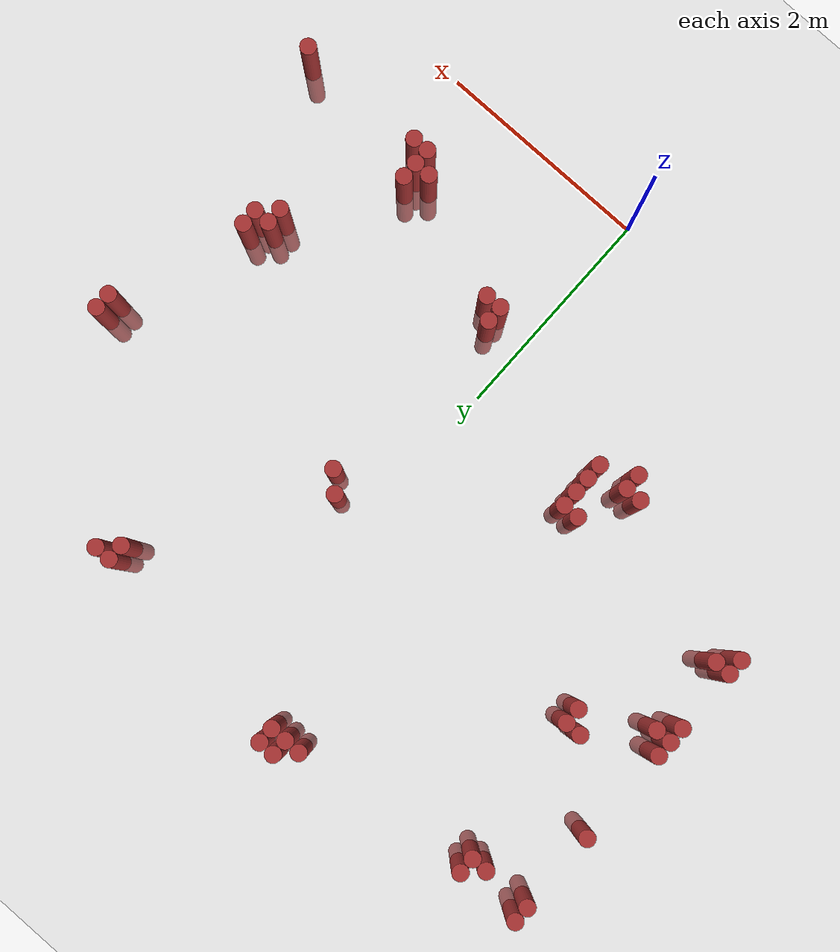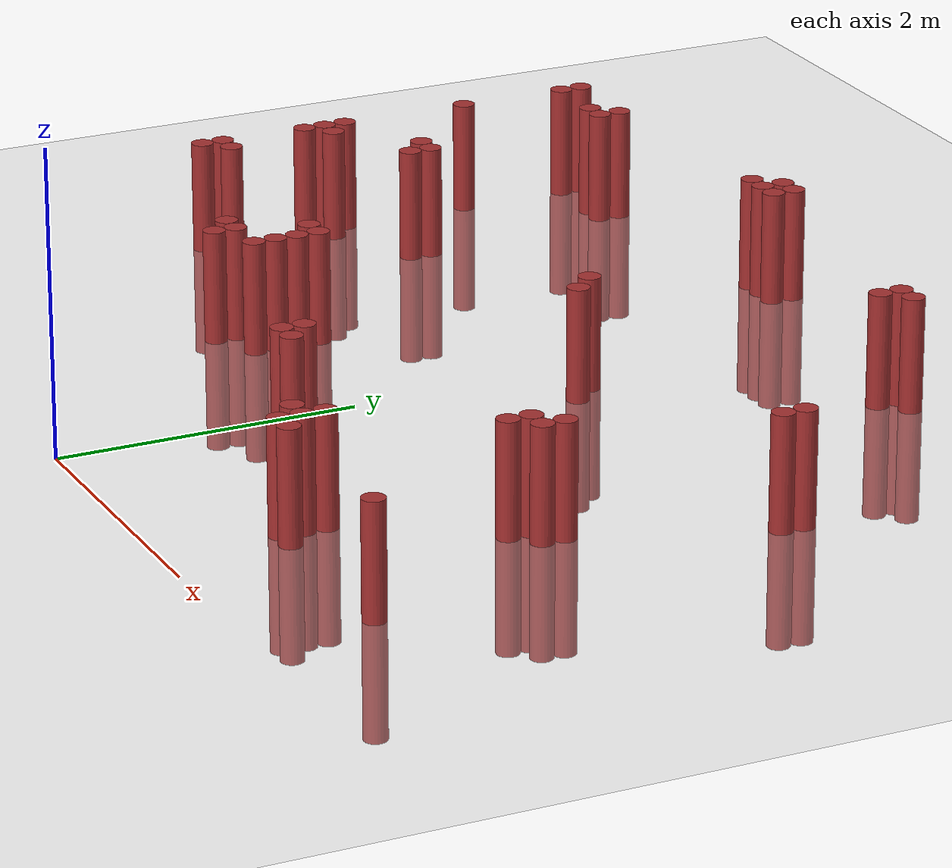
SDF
<sdf version="1.6">
 <world name="default">
  <model name="ground_plane">
   <static>1</static>
   <link name="link">
    <collision name="collision">
     <geometry><plane><normal>0 0 1</normal><size>100 100</size></plane></geometry>
     <surface><friction><ode><mu>100</mu><mu2>50</mu2></ode></friction></surface>
    </collision>
    <visual name="visual">
     <cast_shadows>0</cast_shadows>
     <geometry><plane><normal>0 0 1</normal><size>100 100</size></plane></geometry>
     <material>
      <script><uri>file://media/materials/scripts/gazebo.material</uri><name>Gazebo/Grey</name></script>
     </material>
    </visual>
   </link>
  </model>
  <model name="unit_cylinder_295">
   <static>1</static>
   <pose>-3.125000 2.275000 0.000000 0.000000 0.000000 0.000000</pose>
   <link name="link">
    <inertial>
     <mass>1</mass>
     <inertia><ixx>0.145833</ixx><ixy>0</ixy><ixz>0</ixz><iyy>0.145833</iyy><iyz>0</iyz><izz>0.125</izz></inertia>
    </inertial>
    <collision name="collision">
     <geometry><cylinder><radius>0.075000</radius><length>1.5</length></cylinder></geometry>
    </collision>
    <visual name="visual">
     <geometry><cylinder><radius>0.075000</radius><length>1.5</length></cylinder></geometry>
     <material>
      <ambient>0.648000 0.192000 0.192000 1</ambient>
      <diffuse>0.648000 0.192000 0.192000 1</diffuse>
     </material>
     <material>
      <script><name>Gazebo/Grey</name><uri>file://media/materials/scripts/gazebo.material</uri></script>
     </material>
    </visual>
   </link>
  </model>
  <model name="unit_cylinder_296">
   <static>1</static>
   <pose>-3.125000 2.425000 0.000000 0.000000 0.000000 0.000000</pose>
   <link name="link">
    <inertial>
     <mass>1</mass>
     <inertia><ixx>0.145833</ixx><ixy>0</ixy><ixz>0</ixz><iyy>0.145833</iyy><iyz>0</iyz><izz>0.125</izz></inertia>
    </inertial>
    <collision name="collision">
     <geometry><cylinder><radius>0.075000</radius><length>1.5</length></cylinder></geometry>
    </collision>
    <visual name="visual">
     <geometry><cylinder><radius>0.075000</radius><length>1.5</length></cylinder></geometry>
     <material>
      <ambient>0.648000 0.192000 0.192000 1</ambient>
      <diffuse>0.648000 0.192000 0.192000 1</diffuse>
     </material>
     <material>
      <script><name>Gazebo/Grey</name><uri>file://media/materials/scripts/gazebo.material</uri></script>
     </material>
    </visual>
   </link>
  </model>
  <model name="unit_cylinder_297">
   <static>1</static>
   <pose>-3.125000 3.025000 0.000000 0.000000 0.000000 0.000000</pose>
   <link name="link">
    <inertial>
     <mass>1</mass>
     <inertia><ixx>0.145833</ixx><ixy>0</ixy><ixz>0</ixz><iyy>0.145833</iyy><iyz>0</iyz><izz>0.125</izz></inertia>
    </inertial>
    <collision name="collision">
     <geometry><cylinder><radius>0.075000</radius><length>1.5</length></cylinder></geometry>
    </collision>
    <visual name="visual">
     <geometry><cylinder><radius>0.075000</radius><length>1.5</length></cylinder></geometry>
     <material>
      <ambient>0.648000 0.192000 0.192000 1</ambient>
      <diffuse>0.648000 0.192000 0.192000 1</diffuse>
     </material>
     <material>
      <script><name>Gazebo/Grey</name><uri>file://media/materials/scripts/gazebo.material</uri></script>
     </material>
    </visual>
   </link>
  </model>
  <model name="unit_cylinder_298">
   <static>1</static>
   <pose>-3.125000 3.175000 0.000000 0.000000 0.000000 0.000000</pose>
   <link name="link">
    <inertial>
     <mass>1</mass>
     <inertia><ixx>0.145833</ixx><ixy>0</ixy><ixz>0</ixz><iyy>0.145833</iyy><iyz>0</iyz><izz>0.125</izz></inertia>
    </inertial>
    <collision name="collision">
     <geometry><cylinder><radius>0.075000</radius><length>1.5</length></cylinder></geometry>
    </collision>
    <visual name="visual">
     <geometry><cylinder><radius>0.075000</radius><length>1.5</length></cylinder></geometry>
     <material>
      <ambient>0.648000 0.192000 0.192000 1</ambient>
      <diffuse>0.648000 0.192000 0.192000 1</diffuse>
     </material>
     <material>
      <script><name>Gazebo/Grey</name><uri>file://media/materials/scripts/gazebo.material</uri></script>
     </material>
    </visual>
   </link>
  </model>
  <model name="unit_cylinder_299">
   <static>1</static>
   <pose>-3.125000 3.325000 0.000000 0.000000 0.000000 0.000000</pose>
   <link name="link">
    <inertial>
     <mass>1</mass>
     <inertia><ixx>0.145833</ixx><ixy>0</ixy><ixz>0</ixz><iyy>0.145833</iyy><iyz>0</iyz><izz>0.125</izz></inertia>
    </inertial>
    <collision name="collision">
     <geometry><cylinder><radius>0.075000</radius><length>1.5</length></cylinder></geometry>
    </collision>
    <visual name="visual">
     <geometry><cylinder><radius>0.075000</radius><length>1.5</length></cylinder></geometry>
     <material>
      <ambient>0.648000 0.192000 0.192000 1</ambient>
      <diffuse>0.648000 0.192000 0.192000 1</diffuse>
     </material>
     <material>
      <script><name>Gazebo/Grey</name><uri>file://media/materials/scripts/gazebo.material</uri></script>
     </material>
    </visual>
   </link>
  </model>
  <model name="unit_cylinder_300">
   <static>1</static>
   <pose>-3.125000 4.225000 0.000000 0.000000 0.000000 0.000000</pose>
   <link name="link">
    <inertial>
     <mass>1</mass>
     <inertia><ixx>0.145833</ixx><ixy>0</ixy><ixz>0</ixz><iyy>0.145833</iyy><iyz>0</iyz><izz>0.125</izz></inertia>
    </inertial>
    <collision name="collision">
     <geometry><cylinder><radius>0.075000</radius><length>1.5</length></cylinder></geometry>
    </collision>
    <visual name="visual">
     <geometry><cylinder><radius>0.075000</radius><length>1.5</length></cylinder></geometry>
     <material>
      <ambient>0.648000 0.192000 0.192000 1</ambient>
      <diffuse>0.648000 0.192000 0.192000 1</diffuse>
     </material>
     <material>
      <script><name>Gazebo/Grey</name><uri>file://media/materials/scripts/gazebo.material</uri></script>
     </material>
    </visual>
   </link>
  </model>
  <model name="unit_cylinder_301">
   <static>1</static>
   <pose>-3.125000 4.975000 0.000000 0.000000 0.000000 0.000000</pose>
   <link name="link">
    <inertial>
     <mass>1</mass>
     <inertia><ixx>0.145833</ixx><ixy>0</ixy><ixz>0</ixz><iyy>0.145833</iyy><iyz>0</iyz><izz>0.125</izz></inertia>
    </inertial>
    <collision name="collision">
     <geometry><cylinder><radius>0.075000</radius><length>1.5</length></cylinder></geometry>
    </collision>
    <visual name="visual">
     <geometry><cylinder><radius>0.075000</radius><length>1.5</length></cylinder></geometry>
     <material>
      <ambient>0.648000 0.192000 0.192000 1</ambient>
      <diffuse>0.648000 0.192000 0.192000 1</diffuse>
     </material>
     <material>
      <script><name>Gazebo/Grey</name><uri>file://media/materials/scripts/gazebo.material</uri></script>
     </material>
    </visual>
   </link>
  </model>
  <model name="unit_cylinder_302">
   <static>1</static>
   <pose>-3.125000 5.125000 0.000000 0.000000 0.000000 0.000000</pose>
   <link name="link">
    <inertial>
     <mass>1</mass>
     <inertia><ixx>0.145833</ixx><ixy>0</ixy><ixz>0</ixz><iyy>0.145833</iyy><iyz>0</iyz><izz>0.125</izz></inertia>
    </inertial>
    <collision name="collision">
     <geometry><cylinder><radius>0.075000</radius><length>1.5</length></cylinder></geometry>
    </collision>
    <visual name="visual">
     <geometry><cylinder><radius>0.075000</radius><length>1.5</length></cylinder></geometry>
     <material>
      <ambient>0.648000 0.192000 0.192000 1</ambient>
      <diffuse>0.648000 0.192000 0.192000 1</diffuse>
     </material>
     <material>
      <script><name>Gazebo/Grey</name><uri>file://media/materials/scripts/gazebo.material</uri></script>
     </material>
    </visual>
   </link>
  </model>
  <model name="unit_cylinder_304">
   <static>1</static>
   <pose>-2.975000 2.425000 0.000000 0.000000 0.000000 0.000000</pose>
   <link name="link">
    <inertial>
     <mass>1</mass>
     <inertia><ixx>0.145833</ixx><ixy>0</ixy><ixz>0</ixz><iyy>0.145833</iyy><iyz>0</iyz><izz>0.125</izz></inertia>
    </inertial>
    <collision name="collision">
     <geometry><cylinder><radius>0.075000</radius><length>1.5</length></cylinder></geometry>
    </collision>
    <visual name="visual">
     <geometry><cylinder><radius>0.075000</radius><length>1.5</length></cylinder></geometry>
     <material>
      <ambient>0.648000 0.192000 0.192000 1</ambient>
      <diffuse>0.648000 0.192000 0.192000 1</diffuse>
     </material>
     <material>
      <script><name>Gazebo/Grey</name><uri>file://media/materials/scripts/gazebo.material</uri></script>
     </material>
    </visual>
   </link>
  </model>
  <model name="unit_cylinder_305">
   <static>1</static>
   <pose>-2.975000 3.175000 0.000000 0.000000 0.000000 0.000000</pose>
   <link name="link">
    <inertial>
     <mass>1</mass>
     <inertia><ixx>0.145833</ixx><ixy>0</ixy><ixz>0</ixz><iyy>0.145833</iyy><iyz>0</iyz><izz>0.125</izz></inertia>
    </inertial>
    <collision name="collision">
     <geometry><cylinder><radius>0.075000</radius><length>1.5</length></cylinder></geometry>
    </collision>
    <visual name="visual">
     <geometry><cylinder><radius>0.075000</radius><length>1.5</length></cylinder></geometry>
     <material>
      <ambient>0.648000 0.192000 0.192000 1</ambient>
      <diffuse>0.648000 0.192000 0.192000 1</diffuse>
     </material>
     <material>
      <script><name>Gazebo/Grey</name><uri>file://media/materials/scripts/gazebo.material</uri></script>
     </material>
    </visual>
   </link>
  </model>
  <model name="unit_cylinder_307">
   <static>1</static>
   <pose>-2.675000 4.975000 0.000000 0.000000 0.000000 0.000000</pose>
   <link name="link">
    <inertial>
     <mass>1</mass>
     <inertia><ixx>0.145833</ixx><ixy>0</ixy><ixz>0</ixz><iyy>0.145833</iyy><iyz>0</iyz><izz>0.125</izz></inertia>
    </inertial>
    <collision name="collision">
     <geometry><cylinder><radius>0.075000</radius><length>1.5</length></cylinder></geometry>
    </collision>
    <visual name="visual">
     <geometry><cylinder><radius>0.075000</radius><length>1.5</length></cylinder></geometry>
     <material>
      <ambient>0.648000 0.192000 0.192000 1</ambient>
      <diffuse>0.648000 0.192000 0.192000 1</diffuse>
     </material>
     <material>
      <script><name>Gazebo/Grey</name><uri>file://media/materials/scripts/gazebo.material</uri></script>
     </material>
    </visual>
   </link>
  </model>
  <model name="unit_cylinder_308">
   <static>1</static>
   <pose>-2.525000 3.625000 0.000000 0.000000 0.000000 0.000000</pose>
   <link name="link">
    <inertial>
     <mass>1</mass>
     <inertia><ixx>0.145833</ixx><ixy>0</ixy><ixz>0</ixz><iyy>0.145833</iyy><iyz>0</iyz><izz>0.125</izz></inertia>
    </inertial>
    <collision name="collision">
     <geometry><cylinder><radius>0.075000</radius><length>1.5</length></cylinder></geometry>
    </collision>
    <visual name="visual">
     <geometry><cylinder><radius>0.075000</radius><length>1.5</length></cylinder></geometry>
     <material>
      <ambient>0.648000 0.192000 0.192000 1</ambient>
      <diffuse>0.648000 0.192000 0.192000 1</diffuse>
     </material>
     <material>
      <script><name>Gazebo/Grey</name><uri>file://media/materials/scripts/gazebo.material</uri></script>
     </material>
    </visual>
   </link>
  </model>
  <model name="unit_cylinder_309">
   <static>1</static>
   <pose>-2.525000 4.975000 0.000000 0.000000 0.000000 0.000000</pose>
   <link name="link">
    <inertial>
     <mass>1</mass>
     <inertia><ixx>0.145833</ixx><ixy>0</ixy><ixz>0</ixz><iyy>0.145833</iyy><iyz>0</iyz><izz>0.125</izz></inertia>
    </inertial>
    <collision name="collision">
     <geometry><cylinder><radius>0.075000</radius><length>1.5</length></cylinder></geometry>
    </collision>
    <visual name="visual">
     <geometry><cylinder><radius>0.075000</radius><length>1.5</length></cylinder></geometry>
     <material>
      <ambient>0.648000 0.192000 0.192000 1</ambient>
      <diffuse>0.648000 0.192000 0.192000 1</diffuse>
     </material>
     <material>
      <script><name>Gazebo/Grey</name><uri>file://media/materials/scripts/gazebo.material</uri></script>
     </material>
    </visual>
   </link>
  </model>
  <model name="unit_cylinder_310">
   <static>1</static>
   <pose>-2.525000 5.125000 0.000000 0.000000 0.000000 0.000000</pose>
   <link name="link">
    <inertial>
     <mass>1</mass>
     <inertia><ixx>0.145833</ixx><ixy>0</ixy><ixz>0</ixz><iyy>0.145833</iyy><iyz>0</iyz><izz>0.125</izz></inertia>
    </inertial>
    <collision name="collision">
     <geometry><cylinder><radius>0.075000</radius><length>1.5</length></cylinder></geometry>
    </collision>
    <visual name="visual">
     <geometry><cylinder><radius>0.075000</radius><length>1.5</length></cylinder></geometry>
     <material>
      <ambient>0.648000 0.192000 0.192000 1</ambient>
      <diffuse>0.648000 0.192000 0.192000 1</diffuse>
     </material>
     <material>
      <script><name>Gazebo/Grey</name><uri>file://media/materials/scripts/gazebo.material</uri></script>
     </material>
    </visual>
   </link>
  </model>
  <model name="unit_cylinder_311">
   <static>1</static>
   <pose>-2.375000 3.475000 0.000000 0.000000 0.000000 0.000000</pose>
   <link name="link">
    <inertial>
     <mass>1</mass>
     <inertia><ixx>0.145833</ixx><ixy>0</ixy><ixz>0</ixz><iyy>0.145833</iyy><iyz>0</iyz><izz>0.125</izz></inertia>
    </inertial>
    <collision name="collision">
     <geometry><cylinder><radius>0.075000</radius><length>1.5</length></cylinder></geometry>
    </collision>
    <visual name="visual">
     <geometry><cylinder><radius>0.075000</radius><length>1.5</length></cylinder></geometry>
     <material>
      <ambient>0.648000 0.192000 0.192000 1</ambient>
      <diffuse>0.648000 0.192000 0.192000 1</diffuse>
     </material>
     <material>
      <script><name>Gazebo/Grey</name><uri>file://media/materials/scripts/gazebo.material</uri></script>
     </material>
    </visual>
   </link>
  </model>
  <model name="unit_cylinder_312">
   <static>1</static>
   <pose>-2.375000 3.625000 0.000000 0.000000 0.000000 0.000000</pose>
   <link name="link">
    <inertial>
     <mass>1</mass>
     <inertia><ixx>0.145833</ixx><ixy>0</ixy><ixz>0</ixz><iyy>0.145833</iyy><iyz>0</iyz><izz>0.125</izz></inertia>
    </inertial>
    <collision name="collision">
     <geometry><cylinder><radius>0.075000</radius><length>1.5</length></cylinder></geometry>
    </collision>
    <visual name="visual">
     <geometry><cylinder><radius>0.075000</radius><length>1.5</length></cylinder></geometry>
     <material>
      <ambient>0.648000 0.192000 0.192000 1</ambient>
      <diffuse>0.648000 0.192000 0.192000 1</diffuse>
     </material>
     <material>
      <script><name>Gazebo/Grey</name><uri>file://media/materials/scripts/gazebo.material</uri></script>
     </material>
    </visual>
   </link>
  </model>
  <model name="unit_cylinder_313">
   <static>1</static>
   <pose>-1.625000 1.825000 0.000000 0.000000 0.000000 0.000000</pose>
   <link name="link">
    <inertial>
     <mass>1</mass>
     <inertia><ixx>0.145833</ixx><ixy>0</ixy><ixz>0</ixz><iyy>0.145833</iyy><iyz>0</iyz><izz>0.125</izz></inertia>
    </inertial>
    <collision name="collision">
     <geometry><cylinder><radius>0.075000</radius><length>1.5</length></cylinder></geometry>
    </collision>
    <visual name="visual">
     <geometry><cylinder><radius>0.075000</radius><length>1.5</length></cylinder></geometry>
     <material>
      <ambient>0.648000 0.192000 0.192000 1</ambient>
      <diffuse>0.648000 0.192000 0.192000 1</diffuse>
     </material>
     <material>
      <script><name>Gazebo/Grey</name><uri>file://media/materials/scripts/gazebo.material</uri></script>
     </material>
    </visual>
   </link>
  </model>
  <model name="unit_cylinder_314">
   <static>1</static>
   <pose>-1.475000 1.675000 0.000000 0.000000 0.000000 0.000000</pose>
   <link name="link">
    <inertial>
     <mass>1</mass>
     <inertia><ixx>0.145833</ixx><ixy>0</ixy><ixz>0</ixz><iyy>0.145833</iyy><iyz>0</iyz><izz>0.125</izz></inertia>
    </inertial>
    <collision name="collision">
     <geometry><cylinder><radius>0.075000</radius><length>1.5</length></cylinder></geometry>
    </collision>
    <visual name="visual">
     <geometry><cylinder><radius>0.075000</radius><length>1.5</length></cylinder></geometry>
     <material>
      <ambient>0.648000 0.192000 0.192000 1</ambient>
      <diffuse>0.648000 0.192000 0.192000 1</diffuse>
     </material>
     <material>
      <script><name>Gazebo/Grey</name><uri>file://media/materials/scripts/gazebo.material</uri></script>
     </material>
    </visual>
   </link>
  </model>
  <model name="unit_cylinder_315">
   <static>1</static>
   <pose>-1.475000 1.825000 0.000000 0.000000 0.000000 0.000000</pose>
   <link name="link">
    <inertial>
     <mass>1</mass>
     <inertia><ixx>0.145833</ixx><ixy>0</ixy><ixz>0</ixz><iyy>0.145833</iyy><iyz>0</iyz><izz>0.125</izz></inertia>
    </inertial>
    <collision name="collision">
     <geometry><cylinder><radius>0.075000</radius><length>1.5</length></cylinder></geometry>
    </collision>
    <visual name="visual">
     <geometry><cylinder><radius>0.075000</radius><length>1.5</length></cylinder></geometry>
     <material>
      <ambient>0.648000 0.192000 0.192000 1</ambient>
      <diffuse>0.648000 0.192000 0.192000 1</diffuse>
     </material>
     <material>
      <script><name>Gazebo/Grey</name><uri>file://media/materials/scripts/gazebo.material</uri></script>
     </material>
    </visual>
   </link>
  </model>
  <model name="unit_cylinder_316">
   <static>1</static>
   <pose>-1.325000 2.275000 0.000000 0.000000 0.000000 0.000000</pose>
   <link name="link">
    <inertial>
     <mass>1</mass>
     <inertia><ixx>0.145833</ixx><ixy>0</ixy><ixz>0</ixz><iyy>0.145833</iyy><iyz>0</iyz><izz>0.125</izz></inertia>
    </inertial>
    <collision name="collision">
     <geometry><cylinder><radius>0.075000</radius><length>1.5</length></cylinder></geometry>
    </collision>
    <visual name="visual">
     <geometry><cylinder><radius>0.075000</radius><length>1.5</length></cylinder></geometry>
     <material>
      <ambient>0.648000 0.192000 0.192000 1</ambient>
      <diffuse>0.648000 0.192000 0.192000 1</diffuse>
     </material>
     <material>
      <script><name>Gazebo/Grey</name><uri>file://media/materials/scripts/gazebo.material</uri></script>
     </material>
    </visual>
   </link>
  </model>
  <model name="unit_cylinder_317">
   <static>1</static>
   <pose>-1.175000 1.825000 0.000000 0.000000 0.000000 0.000000</pose>
   <link name="link">
    <inertial>
     <mass>1</mass>
     <inertia><ixx>0.145833</ixx><ixy>0</ixy><ixz>0</ixz><iyy>0.145833</iyy><iyz>0</iyz><izz>0.125</izz></inertia>
    </inertial>
    <collision name="collision">
     <geometry><cylinder><radius>0.075000</radius><length>1.5</length></cylinder></geometry>
    </collision>
    <visual name="visual">
     <geometry><cylinder><radius>0.075000</radius><length>1.5</length></cylinder></geometry>
     <material>
      <ambient>0.648000 0.192000 0.192000 1</ambient>
      <diffuse>0.648000 0.192000 0.192000 1</diffuse>
     </material>
     <material>
      <script><name>Gazebo/Grey</name><uri>file://media/materials/scripts/gazebo.material</uri></script>
     </material>
    </visual>
   </link>
  </model>
  <model name="unit_cylinder_318">
   <static>1</static>
   <pose>-1.175000 1.975000 0.000000 0.000000 0.000000 0.000000</pose>
   <link name="link">
    <inertial>
     <mass>1</mass>
     <inertia><ixx>0.145833</ixx><ixy>0</ixy><ixz>0</ixz><iyy>0.145833</iyy><iyz>0</iyz><izz>0.125</izz></inertia>
    </inertial>
    <collision name="collision">
     <geometry><cylinder><radius>0.075000</radius><length>1.5</length></cylinder></geometry>
    </collision>
    <visual name="visual">
     <geometry><cylinder><radius>0.075000</radius><length>1.5</length></cylinder></geometry>
     <material>
      <ambient>0.648000 0.192000 0.192000 1</ambient>
      <diffuse>0.648000 0.192000 0.192000 1</diffuse>
     </material>
     <material>
      <script><name>Gazebo/Grey</name><uri>file://media/materials/scripts/gazebo.material</uri></script>
     </material>
    </visual>
   </link>
  </model>
  <model name="unit_cylinder_319">
   <static>1</static>
   <pose>-1.175000 2.125000 0.000000 0.000000 0.000000 0.000000</pose>
   <link name="link">
    <inertial>
     <mass>1</mass>
     <inertia><ixx>0.145833</ixx><ixy>0</ixy><ixz>0</ixz><iyy>0.145833</iyy><iyz>0</iyz><izz>0.125</izz></inertia>
    </inertial>
    <collision name="collision">
     <geometry><cylinder><radius>0.075000</radius><length>1.5</length></cylinder></geometry>
    </collision>
    <visual name="visual">
     <geometry><cylinder><radius>0.075000</radius><length>1.5</length></cylinder></geometry>
     <material>
      <ambient>0.648000 0.192000 0.192000 1</ambient>
      <diffuse>0.648000 0.192000 0.192000 1</diffuse>
     </material>
     <material>
      <script><name>Gazebo/Grey</name><uri>file://media/materials/scripts/gazebo.material</uri></script>
     </material>
    </visual>
   </link>
  </model>
  <model name="unit_cylinder_320">
   <static>1</static>
   <pose>-1.175000 2.275000 0.000000 0.000000 0.000000 0.000000</pose>
   <link name="link">
    <inertial>
     <mass>1</mass>
     <inertia><ixx>0.145833</ixx><ixy>0</ixy><ixz>0</ixz><iyy>0.145833</iyy><iyz>0</iyz><izz>0.125</izz></inertia>
    </inertial>
    <collision name="collision">
     <geometry><cylinder><radius>0.075000</radius><length>1.5</length></cylinder></geometry>
    </collision>
    <visual name="visual">
     <geometry><cylinder><radius>0.075000</radius><length>1.5</length></cylinder></geometry>
     <material>
      <ambient>0.648000 0.192000 0.192000 1</ambient>
      <diffuse>0.648000 0.192000 0.192000 1</diffuse>
     </material>
     <material>
      <script><name>Gazebo/Grey</name><uri>file://media/materials/scripts/gazebo.material</uri></script>
     </material>
    </visual>
   </link>
  </model>
  <model name="unit_cylinder_322">
   <static>1</static>
   <pose>-0.875000 5.275000 0.000000 0.000000 0.000000 0.000000</pose>
   <link name="link">
    <inertial>
     <mass>1</mass>
     <inertia><ixx>0.145833</ixx><ixy>0</ixy><ixz>0</ixz><iyy>0.145833</iyy><iyz>0</iyz><izz>0.125</izz></inertia>
    </inertial>
    <collision name="collision">
     <geometry><cylinder><radius>0.075000</radius><length>1.5</length></cylinder></geometry>
    </collision>
    <visual name="visual">
     <geometry><cylinder><radius>0.075000</radius><length>1.5</length></cylinder></geometry>
     <material>
      <ambient>0.648000 0.192000 0.192000 1</ambient>
      <diffuse>0.648000 0.192000 0.192000 1</diffuse>
     </material>
     <material>
      <script><name>Gazebo/Grey</name><uri>file://media/materials/scripts/gazebo.material</uri></script>
     </material>
    </visual>
   </link>
  </model>
  <model name="unit_cylinder_325">
   <static>1</static>
   <pose>-0.725000 5.275000 0.000000 0.000000 0.000000 0.000000</pose>
   <link name="link">
    <inertial>
     <mass>1</mass>
     <inertia><ixx>0.145833</ixx><ixy>0</ixy><ixz>0</ixz><iyy>0.145833</iyy><iyz>0</iyz><izz>0.125</izz></inertia>
    </inertial>
    <collision name="collision">
     <geometry><cylinder><radius>0.075000</radius><length>1.5</length></cylinder></geometry>
    </collision>
    <visual name="visual">
     <geometry><cylinder><radius>0.075000</radius><length>1.5</length></cylinder></geometry>
     <material>
      <ambient>0.648000 0.192000 0.192000 1</ambient>
      <diffuse>0.648000 0.192000 0.192000 1</diffuse>
     </material>
     <material>
      <script><name>Gazebo/Grey</name><uri>file://media/materials/scripts/gazebo.material</uri></script>
     </material>
    </visual>
   </link>
  </model>
  <model name="unit_cylinder_326">
   <static>1</static>
   <pose>-0.725000 5.425000 0.000000 0.000000 0.000000 0.000000</pose>
   <link name="link">
    <inertial>
     <mass>1</mass>
     <inertia><ixx>0.145833</ixx><ixy>0</ixy><ixz>0</ixz><iyy>0.145833</iyy><iyz>0</iyz><izz>0.125</izz></inertia>
    </inertial>
    <collision name="collision">
     <geometry><cylinder><radius>0.075000</radius><length>1.5</length></cylinder></geometry>
    </collision>
    <visual name="visual">
     <geometry><cylinder><radius>0.075000</radius><length>1.5</length></cylinder></geometry>
     <material>
      <ambient>0.648000 0.192000 0.192000 1</ambient>
      <diffuse>0.648000 0.192000 0.192000 1</diffuse>
     </material>
     <material>
      <script><name>Gazebo/Grey</name><uri>file://media/materials/scripts/gazebo.material</uri></script>
     </material>
    </visual>
   </link>
  </model>
  <model name="unit_cylinder_328">
   <static>1</static>
   <pose>-0.575000 5.275000 0.000000 0.000000 0.000000 0.000000</pose>
   <link name="link">
    <inertial>
     <mass>1</mass>
     <inertia><ixx>0.145833</ixx><ixy>0</ixy><ixz>0</ixz><iyy>0.145833</iyy><iyz>0</iyz><izz>0.125</izz></inertia>
    </inertial>
    <collision name="collision">
     <geometry><cylinder><radius>0.075000</radius><length>1.5</length></cylinder></geometry>
    </collision>
    <visual name="visual">
     <geometry><cylinder><radius>0.075000</radius><length>1.5</length></cylinder></geometry>
     <material>
      <ambient>0.648000 0.192000 0.192000 1</ambient>
      <diffuse>0.648000 0.192000 0.192000 1</diffuse>
     </material>
     <material>
      <script><name>Gazebo/Grey</name><uri>file://media/materials/scripts/gazebo.material</uri></script>
     </material>
    </visual>
   </link>
  </model>
  <model name="unit_cylinder_329">
   <static>1</static>
   <pose>-0.575000 5.425000 0.000000 0.000000 0.000000 0.000000</pose>
   <link name="link">
    <inertial>
     <mass>1</mass>
     <inertia><ixx>0.145833</ixx><ixy>0</ixy><ixz>0</ixz><iyy>0.145833</iyy><iyz>0</iyz><izz>0.125</izz></inertia>
    </inertial>
    <collision name="collision">
     <geometry><cylinder><radius>0.075000</radius><length>1.5</length></cylinder></geometry>
    </collision>
    <visual name="visual">
     <geometry><cylinder><radius>0.075000</radius><length>1.5</length></cylinder></geometry>
     <material>
      <ambient>0.648000 0.192000 0.192000 1</ambient>
      <diffuse>0.648000 0.192000 0.192000 1</diffuse>
     </material>
     <material>
      <script><name>Gazebo/Grey</name><uri>file://media/materials/scripts/gazebo.material</uri></script>
     </material>
    </visual>
   </link>
  </model>
  <model name="unit_cylinder_330">
   <static>1</static>
   <pose>0.325000 1.375000 0.000000 0.000000 0.000000 0.000000</pose>
   <link name="link">
    <inertial>
     <mass>1</mass>
     <inertia><ixx>0.145833</ixx><ixy>0</ixy><ixz>0</ixz><iyy>0.145833</iyy><iyz>0</iyz><izz>0.125</izz></inertia>
    </inertial>
    <collision name="collision">
     <geometry><cylinder><radius>0.075000</radius><length>1.5</length></cylinder></geometry>
    </collision>
    <visual name="visual">
     <geometry><cylinder><radius>0.075000</radius><length>1.5</length></cylinder></geometry>
     <material>
      <ambient>0.648000 0.192000 0.192000 1</ambient>
      <diffuse>0.648000 0.192000 0.192000 1</diffuse>
     </material>
     <material>
      <script><name>Gazebo/Grey</name><uri>file://media/materials/scripts/gazebo.material</uri></script>
     </material>
    </visual>
   </link>
  </model>
  <model name="unit_cylinder_331">
   <static>1</static>
   <pose>0.325000 1.525000 0.000000 0.000000 0.000000 0.000000</pose>
   <link name="link">
    <inertial>
     <mass>1</mass>
     <inertia><ixx>0.145833</ixx><ixy>0</ixy><ixz>0</ixz><iyy>0.145833</iyy><iyz>0</iyz><izz>0.125</izz></inertia>
    </inertial>
    <collision name="collision">
     <geometry><cylinder><radius>0.075000</radius><length>1.5</length></cylinder></geometry>
    </collision>
    <visual name="visual">
     <geometry><cylinder><radius>0.075000</radius><length>1.5</length></cylinder></geometry>
     <material>
      <ambient>0.648000 0.192000 0.192000 1</ambient>
      <diffuse>0.648000 0.192000 0.192000 1</diffuse>
     </material>
     <material>
      <script><name>Gazebo/Grey</name><uri>file://media/materials/scripts/gazebo.material</uri></script>
     </material>
    </visual>
   </link>
  </model>
  <model name="unit_cylinder_332">
   <static>1</static>
   <pose>0.325000 3.475000 0.000000 0.000000 0.000000 0.000000</pose>
   <link name="link">
    <inertial>
     <mass>1</mass>
     <inertia><ixx>0.145833</ixx><ixy>0</ixy><ixz>0</ixz><iyy>0.145833</iyy><iyz>0</iyz><izz>0.125</izz></inertia>
    </inertial>
    <collision name="collision">
     <geometry><cylinder><radius>0.075000</radius><length>1.5</length></cylinder></geometry>
    </collision>
    <visual name="visual">
     <geometry><cylinder><radius>0.075000</radius><length>1.5</length></cylinder></geometry>
     <material>
      <ambient>0.648000 0.192000 0.192000 1</ambient>
      <diffuse>0.648000 0.192000 0.192000 1</diffuse>
     </material>
     <material>
      <script><name>Gazebo/Grey</name><uri>file://media/materials/scripts/gazebo.material</uri></script>
     </material>
    </visual>
   </link>
  </model>
  <model name="unit_cylinder_333">
   <static>1</static>
   <pose>0.475000 1.375000 0.000000 0.000000 0.000000 0.000000</pose>
   <link name="link">
    <inertial>
     <mass>1</mass>
     <inertia><ixx>0.145833</ixx><ixy>0</ixy><ixz>0</ixz><iyy>0.145833</iyy><iyz>0</iyz><izz>0.125</izz></inertia>
    </inertial>
    <collision name="collision">
     <geometry><cylinder><radius>0.075000</radius><length>1.5</length></cylinder></geometry>
    </collision>
    <visual name="visual">
     <geometry><cylinder><radius>0.075000</radius><length>1.5</length></cylinder></geometry>
     <material>
      <ambient>0.648000 0.192000 0.192000 1</ambient>
      <diffuse>0.648000 0.192000 0.192000 1</diffuse>
     </material>
     <material>
      <script><name>Gazebo/Grey</name><uri>file://media/materials/scripts/gazebo.material</uri></script>
     </material>
    </visual>
   </link>
  </model>
  <model name="unit_cylinder_334">
   <static>1</static>
   <pose>0.475000 3.325000 0.000000 0.000000 0.000000 0.000000</pose>
   <link name="link">
    <inertial>
     <mass>1</mass>
     <inertia><ixx>0.145833</ixx><ixy>0</ixy><ixz>0</ixz><iyy>0.145833</iyy><iyz>0</iyz><izz>0.125</izz></inertia>
    </inertial>
    <collision name="collision">
     <geometry><cylinder><radius>0.075000</radius><length>1.5</length></cylinder></geometry>
    </collision>
    <visual name="visual">
     <geometry><cylinder><radius>0.075000</radius><length>1.5</length></cylinder></geometry>
     <material>
      <ambient>0.648000 0.192000 0.192000 1</ambient>
      <diffuse>0.648000 0.192000 0.192000 1</diffuse>
     </material>
     <material>
      <script><name>Gazebo/Grey</name><uri>file://media/materials/scripts/gazebo.material</uri></script>
     </material>
    </visual>
   </link>
  </model>
  <model name="unit_cylinder_338">
   <static>1</static>
   <pose>1.375000 4.975000 0.000000 0.000000 0.000000 0.000000</pose>
   <link name="link">
    <inertial>
     <mass>1</mass>
     <inertia><ixx>0.145833</ixx><ixy>0</ixy><ixz>0</ixz><iyy>0.145833</iyy><iyz>0</iyz><izz>0.125</izz></inertia>
    </inertial>
    <collision name="collision">
     <geometry><cylinder><radius>0.075000</radius><length>1.5</length></cylinder></geometry>
    </collision>
    <visual name="visual">
     <geometry><cylinder><radius>0.075000</radius><length>1.5</length></cylinder></geometry>
     <material>
      <ambient>0.648000 0.192000 0.192000 1</ambient>
      <diffuse>0.648000 0.192000 0.192000 1</diffuse>
     </material>
     <material>
      <script><name>Gazebo/Grey</name><uri>file://media/materials/scripts/gazebo.material</uri></script>
     </material>
    </visual>
   </link>
  </model>
  <model name="unit_cylinder_339">
   <static>1</static>
   <pose>1.375000 5.125000 0.000000 0.000000 0.000000 0.000000</pose>
   <link name="link">
    <inertial>
     <mass>1</mass>
     <inertia><ixx>0.145833</ixx><ixy>0</ixy><ixz>0</ixz><iyy>0.145833</iyy><iyz>0</iyz><izz>0.125</izz></inertia>
    </inertial>
    <collision name="collision">
     <geometry><cylinder><radius>0.075000</radius><length>1.5</length></cylinder></geometry>
    </collision>
    <visual name="visual">
     <geometry><cylinder><radius>0.075000</radius><length>1.5</length></cylinder></geometry>
     <material>
      <ambient>0.648000 0.192000 0.192000 1</ambient>
      <diffuse>0.648000 0.192000 0.192000 1</diffuse>
     </material>
     <material>
      <script><name>Gazebo/Grey</name><uri>file://media/materials/scripts/gazebo.material</uri></script>
     </material>
    </visual>
   </link>
  </model>
  <model name="unit_cylinder_341">
   <static>1</static>
   <pose>1.525000 0.925000 0.000000 0.000000 0.000000 0.000000</pose>
   <link name="link">
    <inertial>
     <mass>1</mass>
     <inertia><ixx>0.145833</ixx><ixy>0</ixy><ixz>0</ixz><iyy>0.145833</iyy><iyz>0</iyz><izz>0.125</izz></inertia>
    </inertial>
    <collision name="collision">
     <geometry><cylinder><radius>0.075000</radius><length>1.5</length></cylinder></geometry>
    </collision>
    <visual name="visual">
     <geometry><cylinder><radius>0.075000</radius><length>1.5</length></cylinder></geometry>
     <material>
      <ambient>0.648000 0.192000 0.192000 1</ambient>
      <diffuse>0.648000 0.192000 0.192000 1</diffuse>
     </material>
     <material>
      <script><name>Gazebo/Grey</name><uri>file://media/materials/scripts/gazebo.material</uri></script>
     </material>
    </visual>
   </link>
  </model>
  <model name="unit_cylinder_342">
   <static>1</static>
   <pose>1.525000 5.125000 0.000000 0.000000 0.000000 0.000000</pose>
   <link name="link">
    <inertial>
     <mass>1</mass>
     <inertia><ixx>0.145833</ixx><ixy>0</ixy><ixz>0</ixz><iyy>0.145833</iyy><iyz>0</iyz><izz>0.125</izz></inertia>
    </inertial>
    <collision name="collision">
     <geometry><cylinder><radius>0.075000</radius><length>1.5</length></cylinder></geometry>
    </collision>
    <visual name="visual">
     <geometry><cylinder><radius>0.075000</radius><length>1.5</length></cylinder></geometry>
     <material>
      <ambient>0.648000 0.192000 0.192000 1</ambient>
      <diffuse>0.648000 0.192000 0.192000 1</diffuse>
     </material>
     <material>
      <script><name>Gazebo/Grey</name><uri>file://media/materials/scripts/gazebo.material</uri></script>
     </material>
    </visual>
   </link>
  </model>
  <model name="unit_cylinder_346">
   <static>1</static>
   <pose>1.675000 0.775000 0.000000 0.000000 0.000000 0.000000</pose>
   <link name="link">
    <inertial>
     <mass>1</mass>
     <inertia><ixx>0.145833</ixx><ixy>0</ixy><ixz>0</ixz><iyy>0.145833</iyy><iyz>0</iyz><izz>0.125</izz></inertia>
    </inertial>
    <collision name="collision">
     <geometry><cylinder><radius>0.075000</radius><length>1.5</length></cylinder></geometry>
    </collision>
    <visual name="visual">
     <geometry><cylinder><radius>0.075000</radius><length>1.5</length></cylinder></geometry>
     <material>
      <ambient>0.648000 0.192000 0.192000 1</ambient>
      <diffuse>0.648000 0.192000 0.192000 1</diffuse>
     </material>
     <material>
      <script><name>Gazebo/Grey</name><uri>file://media/materials/scripts/gazebo.material</uri></script>
     </material>
    </visual>
   </link>
  </model>
  <model name="unit_cylinder_347">
   <static>1</static>
   <pose>1.675000 0.925000 0.000000 0.000000 0.000000 0.000000</pose>
   <link name="link">
    <inertial>
     <mass>1</mass>
     <inertia><ixx>0.145833</ixx><ixy>0</ixy><ixz>0</ixz><iyy>0.145833</iyy><iyz>0</iyz><izz>0.125</izz></inertia>
    </inertial>
    <collision name="collision">
     <geometry><cylinder><radius>0.075000</radius><length>1.5</length></cylinder></geometry>
    </collision>
    <visual name="visual">
     <geometry><cylinder><radius>0.075000</radius><length>1.5</length></cylinder></geometry>
     <material>
      <ambient>0.648000 0.192000 0.192000 1</ambient>
      <diffuse>0.648000 0.192000 0.192000 1</diffuse>
     </material>
     <material>
      <script><name>Gazebo/Grey</name><uri>file://media/materials/scripts/gazebo.material</uri></script>
     </material>
    </visual>
   </link>
  </model>
  <model name="unit_cylinder_348">
   <static>1</static>
   <pose>1.675000 1.075000 0.000000 0.000000 0.000000 0.000000</pose>
   <link name="link">
    <inertial>
     <mass>1</mass>
     <inertia><ixx>0.145833</ixx><ixy>0</ixy><ixz>0</ixz><iyy>0.145833</iyy><iyz>0</iyz><izz>0.125</izz></inertia>
    </inertial>
    <collision name="collision">
     <geometry><cylinder><radius>0.075000</radius><length>1.5</length></cylinder></geometry>
    </collision>
    <visual name="visual">
     <geometry><cylinder><radius>0.075000</radius><length>1.5</length></cylinder></geometry>
     <material>
      <ambient>0.648000 0.192000 0.192000 1</ambient>
      <diffuse>0.648000 0.192000 0.192000 1</diffuse>
     </material>
     <material>
      <script><name>Gazebo/Grey</name><uri>file://media/materials/scripts/gazebo.material</uri></script>
     </material>
    </visual>
   </link>
  </model>
  <model name="unit_cylinder_350">
   <static>1</static>
   <pose>1.825000 0.775000 0.000000 0.000000 0.000000 0.000000</pose>
   <link name="link">
    <inertial>
     <mass>1</mass>
     <inertia><ixx>0.145833</ixx><ixy>0</ixy><ixz>0</ixz><iyy>0.145833</iyy><iyz>0</iyz><izz>0.125</izz></inertia>
    </inertial>
    <collision name="collision">
     <geometry><cylinder><radius>0.075000</radius><length>1.5</length></cylinder></geometry>
    </collision>
    <visual name="visual">
     <geometry><cylinder><radius>0.075000</radius><length>1.5</length></cylinder></geometry>
     <material>
      <ambient>0.648000 0.192000 0.192000 1</ambient>
      <diffuse>0.648000 0.192000 0.192000 1</diffuse>
     </material>
     <material>
      <script><name>Gazebo/Grey</name><uri>file://media/materials/scripts/gazebo.material</uri></script>
     </material>
    </visual>
   </link>
  </model>
  <model name="unit_cylinder_352">
   <static>1</static>
   <pose>2.275000 1.975000 0.000000 0.000000 0.000000 0.000000</pose>
   <link name="link">
    <inertial>
     <mass>1</mass>
     <inertia><ixx>0.145833</ixx><ixy>0</ixy><ixz>0</ixz><iyy>0.145833</iyy><iyz>0</iyz><izz>0.125</izz></inertia>
    </inertial>
    <collision name="collision">
     <geometry><cylinder><radius>0.075000</radius><length>1.5</length></cylinder></geometry>
    </collision>
    <visual name="visual">
     <geometry><cylinder><radius>0.075000</radius><length>1.5</length></cylinder></geometry>
     <material>
      <ambient>0.648000 0.192000 0.192000 1</ambient>
      <diffuse>0.648000 0.192000 0.192000 1</diffuse>
     </material>
     <material>
      <script><name>Gazebo/Grey</name><uri>file://media/materials/scripts/gazebo.material</uri></script>
     </material>
    </visual>
   </link>
  </model>
  <model name="unit_cylinder_353">
   <static>1</static>
   <pose>2.275000 2.125000 0.000000 0.000000 0.000000 0.000000</pose>
   <link name="link">
    <inertial>
     <mass>1</mass>
     <inertia><ixx>0.145833</ixx><ixy>0</ixy><ixz>0</ixz><iyy>0.145833</iyy><iyz>0</iyz><izz>0.125</izz></inertia>
    </inertial>
    <collision name="collision">
     <geometry><cylinder><radius>0.075000</radius><length>1.5</length></cylinder></geometry>
    </collision>
    <visual name="visual">
     <geometry><cylinder><radius>0.075000</radius><length>1.5</length></cylinder></geometry>
     <material>
      <ambient>0.648000 0.192000 0.192000 1</ambient>
      <diffuse>0.648000 0.192000 0.192000 1</diffuse>
     </material>
     <material>
      <script><name>Gazebo/Grey</name><uri>file://media/materials/scripts/gazebo.material</uri></script>
     </material>
    </visual>
   </link>
  </model>
  <model name="unit_cylinder_354">
   <static>1</static>
   <pose>2.425000 2.125000 0.000000 0.000000 0.000000 0.000000</pose>
   <link name="link">
    <inertial>
     <mass>1</mass>
     <inertia><ixx>0.145833</ixx><ixy>0</ixy><ixz>0</ixz><iyy>0.145833</iyy><iyz>0</iyz><izz>0.125</izz></inertia>
    </inertial>
    <collision name="collision">
     <geometry><cylinder><radius>0.075000</radius><length>1.5</length></cylinder></geometry>
    </collision>
    <visual name="visual">
     <geometry><cylinder><radius>0.075000</radius><length>1.5</length></cylinder></geometry>
     <material>
      <ambient>0.648000 0.192000 0.192000 1</ambient>
      <diffuse>0.648000 0.192000 0.192000 1</diffuse>
     </material>
     <material>
      <script><name>Gazebo/Grey</name><uri>file://media/materials/scripts/gazebo.material</uri></script>
     </material>
    </visual>
   </link>
  </model>
  <model name="unit_cylinder_355">
   <static>1</static>
   <pose>2.425000 2.275000 0.000000 0.000000 0.000000 0.000000</pose>
   <link name="link">
    <inertial>
     <mass>1</mass>
     <inertia><ixx>0.145833</ixx><ixy>0</ixy><ixz>0</ixz><iyy>0.145833</iyy><iyz>0</iyz><izz>0.125</izz></inertia>
    </inertial>
    <collision name="collision">
     <geometry><cylinder><radius>0.075000</radius><length>1.5</length></cylinder></geometry>
    </collision>
    <visual name="visual">
     <geometry><cylinder><radius>0.075000</radius><length>1.5</length></cylinder></geometry>
     <material>
      <ambient>0.648000 0.192000 0.192000 1</ambient>
      <diffuse>0.648000 0.192000 0.192000 1</diffuse>
     </material>
     <material>
      <script><name>Gazebo/Grey</name><uri>file://media/materials/scripts/gazebo.material</uri></script>
     </material>
    </visual>
   </link>
  </model>
  <model name="unit_cylinder_356">
   <static>1</static>
   <pose>2.875000 3.475000 0.000000 0.000000 0.000000 0.000000</pose>
   <link name="link">
    <inertial>
     <mass>1</mass>
     <inertia><ixx>0.145833</ixx><ixy>0</ixy><ixz>0</ixz><iyy>0.145833</iyy><iyz>0</iyz><izz>0.125</izz></inertia>
    </inertial>
    <collision name="collision">
     <geometry><cylinder><radius>0.075000</radius><length>1.5</length></cylinder></geometry>
    </collision>
    <visual name="visual">
     <geometry><cylinder><radius>0.075000</radius><length>1.5</length></cylinder></geometry>
     <material>
      <ambient>0.648000 0.192000 0.192000 1</ambient>
      <diffuse>0.648000 0.192000 0.192000 1</diffuse>
     </material>
     <material>
      <script><name>Gazebo/Grey</name><uri>file://media/materials/scripts/gazebo.material</uri></script>
     </material>
    </visual>
   </link>
  </model>
  <model name="unit_cylinder_357">
   <static>1</static>
   <pose>2.875000 3.625000 0.000000 0.000000 0.000000 0.000000</pose>
   <link name="link">
    <inertial>
     <mass>1</mass>
     <inertia><ixx>0.145833</ixx><ixy>0</ixy><ixz>0</ixz><iyy>0.145833</iyy><iyz>0</iyz><izz>0.125</izz></inertia>
    </inertial>
    <collision name="collision">
     <geometry><cylinder><radius>0.075000</radius><length>1.5</length></cylinder></geometry>
    </collision>
    <visual name="visual">
     <geometry><cylinder><radius>0.075000</radius><length>1.5</length></cylinder></geometry>
     <material>
      <ambient>0.648000 0.192000 0.192000 1</ambient>
      <diffuse>0.648000 0.192000 0.192000 1</diffuse>
     </material>
     <material>
      <script><name>Gazebo/Grey</name><uri>file://media/materials/scripts/gazebo.material</uri></script>
     </material>
    </visual>
   </link>
  </model>
  <model name="unit_cylinder_359">
   <static>1</static>
   <pose>3.025000 0.775000 0.000000 0.000000 0.000000 0.000000</pose>
   <link name="link">
    <inertial>
     <mass>1</mass>
     <inertia><ixx>0.145833</ixx><ixy>0</ixy><ixz>0</ixz><iyy>0.145833</iyy><iyz>0</iyz><izz>0.125</izz></inertia>
    </inertial>
    <collision name="collision">
     <geometry><cylinder><radius>0.075000</radius><length>1.5</length></cylinder></geometry>
    </collision>
    <visual name="visual">
     <geometry><cylinder><radius>0.075000</radius><length>1.5</length></cylinder></geometry>
     <material>
      <ambient>0.648000 0.192000 0.192000 1</ambient>
      <diffuse>0.648000 0.192000 0.192000 1</diffuse>
     </material>
     <material>
      <script><name>Gazebo/Grey</name><uri>file://media/materials/scripts/gazebo.material</uri></script>
     </material>
    </visual>
   </link>
  </model>
 </world>
</sdf>
